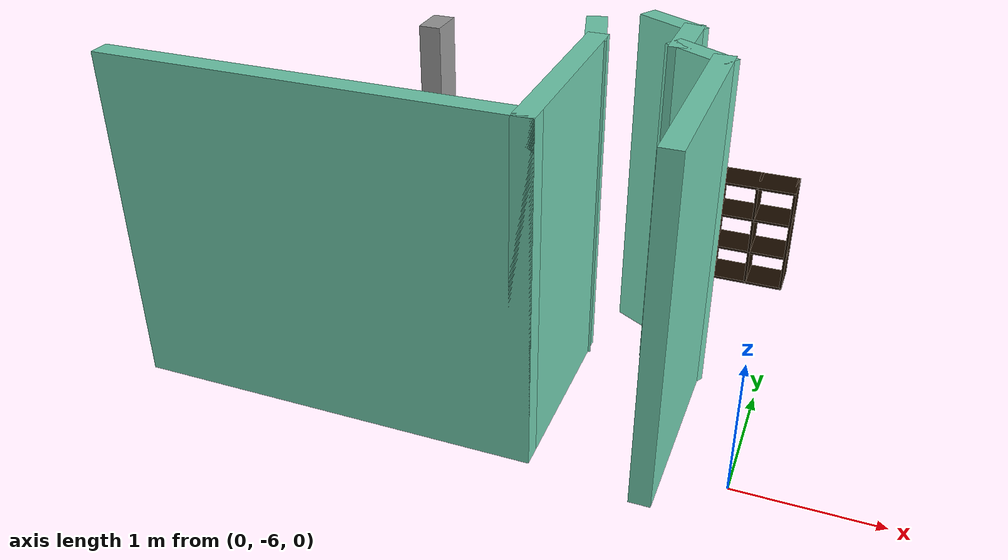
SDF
<sdf version="1.6">
 <world name="default">
  <model name="map_3">
   <pose>0.639107 -0.35531 0 0 -0 0</pose>
   <link name="Wall_134">
    <collision name="Wall_134_Collision">
     <geometry><box><size>0.25 0.15 2.5</size></box></geometry>
     <pose>0 0 1.25 0 -0 0</pose>
    </collision>
    <visual name="Wall_134_Visual">
     <pose>0 0 1.25 0 -0 0</pose>
     <geometry><box><size>0.25 0.15 2.5</size></box></geometry>
     <material>
      <script><uri>file://media/materials/scripts/gazebo.material</uri><name>Gazebo/Grey</name></script>
      <ambient>1 1 1 1</ambient>
     </material>
     <meta><layer>0</layer></meta>
    </visual>
    <pose>-3.10893 -4.55681 0 0 -0 -1.5708</pose>
   </link>
   <link name="Wall_65">
    <collision name="Wall_65_Collision">
     <geometry><box><size>3 0.15 2.5</size></box></geometry>
     <pose>0 0 1.25 0 -0 0</pose>
    </collision>
    <visual name="Wall_65_Visual">
     <pose>0 0 1.25 0 -0 0</pose>
     <geometry><box><size>3 0.15 2.5</size></box></geometry>
     <material>
      <script><uri>file://media/materials/scripts/gazebo.material</uri><name>Gazebo/Grey</name></script>
      <ambient>0.435294 0.796078 0.67451 1</ambient>
     </material>
     <meta><layer>0</layer></meta>
    </visual>
    <pose>-3.43168 -5.80901 0 0 -0 0</pose>
   </link>
   <link name="Wall_66">
    <collision name="Wall_66_Collision">
     <geometry><box><size>1.5 0.15 2.5</size></box></geometry>
     <pose>0 0 1.25 0 -0 0</pose>
    </collision>
    <visual name="Wall_66_Visual">
     <pose>0 0 1.25 0 -0 0</pose>
     <geometry><box><size>1.5 0.15 2.5</size></box></geometry>
     <material>
      <script><uri>file://media/materials/scripts/gazebo.material</uri><name>Gazebo/Grey</name></script>
      <ambient>0.435294 0.796078 0.67451 1</ambient>
     </material>
     <meta><layer>0</layer></meta>
    </visual>
    <pose>-2.00669 -5.13401 0 0 -0 1.5708</pose>
   </link>
   <link name="Wall_67">
    <collision name="Wall_67_Collision">
     <geometry><box><size>0.5 0.15 2.5</size></box></geometry>
     <pose>0 0 1.25 0 -0 0</pose>
    </collision>
    <visual name="Wall_67_Visual">
     <pose>0 0 1.25 0 -0 0</pose>
     <geometry><box><size>0.5 0.15 2.5</size></box></geometry>
     <material>
      <script><uri>file://media/materials/scripts/gazebo.material</uri><name>Gazebo/Grey</name></script>
      <ambient>0.435294 0.796078 0.67451 1</ambient>
     </material>
     <meta><layer>0</layer></meta>
    </visual>
    <pose>-2.05198 -4.28997 0 0 -0 1.8326</pose>
   </link>
   <link name="Wall_71">
    <collision name="Wall_71_Collision">
     <geometry><box><size>0.5 0.15 2.5</size></box></geometry>
     <pose>0 0 1.25 0 -0 0</pose>
    </collision>
    <visual name="Wall_71_Visual">
     <pose>0 0 1.25 0 -0 0</pose>
     <geometry><box><size>0.5 0.15 2.5</size></box></geometry>
     <material>
      <script><uri>file://media/materials/scripts/gazebo.material</uri><name>Gazebo/Grey</name></script>
      <ambient>0.435294 0.796078 0.67451 1</ambient>
     </material>
     <meta><layer>0</layer></meta>
    </visual>
    <pose>-1.59572 -3.95843 0 0 -0 -0.523599</pose>
   </link>
   <link name="Wall_72">
    <collision name="Wall_72_Collision">
     <geometry><box><size>0.5 0.15 2.5</size></box></geometry>
     <pose>0 0 1.25 0 -0 0</pose>
    </collision>
    <visual name="Wall_72_Visual">
     <pose>0 0 1.25 0 -0 0</pose>
     <geometry><box><size>0.5 0.15 2.5</size></box></geometry>
     <material>
      <script><uri>file://media/materials/scripts/gazebo.material</uri><name>Gazebo/Grey</name></script>
      <ambient>0.435294 0.796078 0.67451 1</ambient>
     </material>
     <meta><layer>0</layer></meta>
    </visual>
    <pose>-1.44416 -4.22093 0 0 -0 -1.5708</pose>
   </link>
   <link name="Wall_73">
    <collision name="Wall_73_Collision">
     <geometry><box><size>0.5 0.15 2.5</size></box></geometry>
     <pose>0 0 1.25 0 -0 0</pose>
    </collision>
    <visual name="Wall_73_Visual">
     <pose>0 0 1.25 0 -0 0</pose>
     <geometry><box><size>0.5 0.15 2.5</size></box></geometry>
     <material>
      <script><uri>file://media/materials/scripts/gazebo.material</uri><name>Gazebo/Grey</name></script>
      <ambient>0.435294 0.796078 0.67451 1</ambient>
     </material>
     <meta><layer>0</layer></meta>
    </visual>
    <pose>-1.29261 -4.48343 0 0 -0 -0.523599</pose>
   </link>
   <link name="Wall_74">
    <collision name="Wall_74_Collision">
     <geometry><box><size>1.5 0.15 2.5</size></box></geometry>
     <pose>0 0 1.25 0 -0 0</pose>
    </collision>
    <visual name="Wall_74_Visual">
     <pose>0 0 1.25 0 -0 0</pose>
     <geometry><box><size>1.5 0.15 2.5</size></box></geometry>
     <material>
      <script><uri>file://media/materials/scripts/gazebo.material</uri><name>Gazebo/Grey</name></script>
      <ambient>0.435294 0.796078 0.67451 1</ambient>
     </material>
     <meta><layer>0</layer></meta>
    </visual>
    <pose>-1.14105 -5.24593 0 0 -0 -1.5708</pose>
   </link>
   <static>1</static>
  </model>
  <model name="6_Cube_StorageE_0">
   <link name="Wall_0">
    <pose>0 0 0.01 0 -0 0</pose>
    <inertial>
     <mass>1.6201</mass>
     <inertia><ixx>0.0119</ixx><iyy>0.0631</iyy><izz>0.0513</izz><ixy>0</ixy><ixz>0</ixz><iyz>0</iyz></inertia>
    </inertial>
    <collision name="Wall_0_Collision"><geometry><box><size>0.616 0.296 0.02</size></box></geometry></collision>
    <visual name="Wall_0_Visual">
     <geometry><box><size>0.616 0.296 0.02</size></box></geometry>
     <material>
      <script><uri>file://media/materials/scripts/gazebo.material</uri><name>Gazebo/Grey</name></script>
      <ambient>0.105882 0.0509804 0 1</ambient>
     </material>
    </visual>
   </link>
   <joint name="0_2" type="fixed">
    <pose>-0.308 0 0 0 -0 0</pose>
    <parent>Wall_2</parent>
    <child>Wall_0</child>
    <axis>
     <xyz>1 0 0</xyz>
     <use_parent_model_frame>0</use_parent_model_frame>
     <limit><lower>-1e+16</lower><upper>1e+16</upper></limit>
    </axis>
   </joint>
   <joint name="0_12" type="fixed">
    <parent>Wall_12</parent>
    <child>Wall_0</child>
    <axis>
     <xyz>0 0 1</xyz>
     <use_parent_model_frame>0</use_parent_model_frame>
     <limit><lower>-1e+16</lower><upper>1e+16</upper></limit>
    </axis>
   </joint>
   <joint name="0_4" type="fixed">
    <pose>0.308 0 0 0 -0 0</pose>
    <parent>Wall_4</parent>
    <child>Wall_0</child>
    <axis>
     <xyz>1 0 0</xyz>
     <use_parent_model_frame>0</use_parent_model_frame>
     <limit><lower>-1e+16</lower><upper>1e+16</upper></limit>
    </axis>
   </joint>
   <link name="Wall_10">
    <pose>0 0 0.61 0 -0 0</pose>
    <inertial>
     <mass>1.6201</mass>
     <inertia><ixx>0.0119</ixx><iyy>0.0631</iyy><izz>0.0513</izz><ixy>0</ixy><ixz>0</ixz><iyz>0</iyz></inertia>
    </inertial>
    <collision name="Wall_10_Collision"><geometry><box><size>0.616 0.296 0.02</size></box></geometry></collision>
    <visual name="Wall_10_Visual">
     <geometry><box><size>0.616 0.296 0.02</size></box></geometry>
     <material>
      <script><uri>file://media/materials/scripts/gazebo.material</uri><name>Gazebo/Grey</name></script>
      <ambient>0.105882 0.0509804 0 1</ambient>
     </material>
    </visual>
   </link>
   <joint name="10_2" type="fixed">
    <pose>-0.308 0 0 0 -0 0</pose>
    <parent>Wall_2</parent>
    <child>Wall_10</child>
    <axis>
     <xyz>1 0 0</xyz>
     <use_parent_model_frame>0</use_parent_model_frame>
     <limit><lower>-1e+16</lower><upper>1e+16</upper></limit>
    </axis>
   </joint>
   <joint name="10_12" type="fixed">
    <parent>Wall_12</parent>
    <child>Wall_10</child>
    <axis>
     <xyz>0 0 1</xyz>
     <use_parent_model_frame>0</use_parent_model_frame>
     <limit><lower>-1e+16</lower><upper>1e+16</upper></limit>
    </axis>
   </joint>
   <joint name="10_4" type="fixed">
    <pose>0.308 0 0 0 -0 0</pose>
    <parent>Wall_4</parent>
    <child>Wall_10</child>
    <axis>
     <xyz>1 0 0</xyz>
     <use_parent_model_frame>0</use_parent_model_frame>
     <limit><lower>-1e+16</lower><upper>1e+16</upper></limit>
    </axis>
   </joint>
   <link name="Wall_12">
    <pose>0 0 0.4575 0 -0 0</pose>
    <inertial>
     <mass>2.4065</mass>
     <inertia><ixx>0.0177</ixx><iyy>0.1855</iyy><izz>0.168</izz><ixy>0</ixy><ixz>0</ixz><iyz>0</iyz></inertia>
    </inertial>
    <collision name="Wall_12_Collision"><geometry><box><size>0.02 0.296 0.915</size></box></geometry></collision>
    <visual name="Wall_12_Visual">
     <geometry><box><size>0.02 0.296 0.915</size></box></geometry>
     <material>
      <script><uri>file://media/materials/scripts/gazebo.material</uri><name>Gazebo/Grey</name></script>
      <ambient>0.105882 0.0509804 0 1</ambient>
     </material>
    </visual>
   </link>
   <link name="Wall_2">
    <pose>-0.298 0 0.4575 0 -0 0</pose>
    <inertial>
     <mass>2.4065</mass>
     <inertia><ixx>0.0177</ixx><iyy>0.1855</iyy><izz>0.168</izz><ixy>0</ixy><ixz>0</ixz><iyz>0</iyz></inertia>
    </inertial>
    <collision name="Wall_2_Collision"><geometry><box><size>0.02 0.296 0.915</size></box></geometry></collision>
    <visual name="Wall_2_Visual">
     <geometry><box><size>0.02 0.296 0.915</size></box></geometry>
     <material>
      <script><uri>file://media/materials/scripts/gazebo.material</uri><name>Gazebo/Grey</name></script>
      <ambient>0.105882 0.0509804 0 1</ambient>
     </material>
    </visual>
   </link>
   <link name="Wall_4">
    <pose>0.298 0 0.4575 0 -0 0</pose>
    <inertial>
     <mass>2.4065</mass>
     <inertia><ixx>0.0177</ixx><iyy>0.1855</iyy><izz>0.168</izz><ixy>0</ixy><ixz>0</ixz><iyz>0</iyz></inertia>
    </inertial>
    <collision name="Wall_4_Collision"><geometry><box><size>0.02 0.296 0.915</size></box></geometry></collision>
    <visual name="Wall_4_Visual">
     <geometry><box><size>0.02 0.296 0.915</size></box></geometry>
     <material>
      <script><uri>file://media/materials/scripts/gazebo.material</uri><name>Gazebo/Grey</name></script>
      <ambient>0.105882 0.0509804 0 1</ambient>
     </material>
    </visual>
   </link>
   <link name="Wall_6">
    <pose>0 0 0.905 0 -0 0</pose>
    <inertial>
     <mass>1.6201</mass>
     <inertia><ixx>0.0119</ixx><iyy>0.0631</iyy><izz>0.0513</izz><ixy>0</ixy><ixz>0</ixz><iyz>0</iyz></inertia>
    </inertial>
    <collision name="Wall_6_Collision"><geometry><box><size>0.616 0.296 0.02</size></box></geometry></collision>
    <visual name="Wall_6_Visual">
     <geometry><box><size>0.616 0.296 0.02</size></box></geometry>
     <material>
      <script><uri>file://media/materials/scripts/gazebo.material</uri><name>Gazebo/Grey</name></script>
      <ambient>0.105882 0.0509804 0 1</ambient>
     </material>
    </visual>
   </link>
   <joint name="6_2" type="fixed">
    <pose>-0.308 0 0 0 -0 0</pose>
    <parent>Wall_2</parent>
    <child>Wall_6</child>
    <axis>
     <xyz>2 0 0</xyz>
     <use_parent_model_frame>0</use_parent_model_frame>
     <limit><lower>-1e+16</lower><upper>1e+16</upper></limit>
    </axis>
   </joint>
   <joint name="6_12" type="fixed">
    <parent>Wall_12</parent>
    <child>Wall_6</child>
    <axis>
     <xyz>0 0 1</xyz>
     <use_parent_model_frame>0</use_parent_model_frame>
     <limit><lower>-1e+16</lower><upper>1e+16</upper></limit>
    </axis>
   </joint>
   <joint name="6_4" type="fixed">
    <pose>0.308 0 0 0 -0 0</pose>
    <parent>Wall_4</parent>
    <child>Wall_6</child>
    <axis>
     <xyz>1 0 0</xyz>
     <use_parent_model_frame>0</use_parent_model_frame>
     <limit><lower>-1e+16</lower><upper>1e+16</upper></limit>
    </axis>
   </joint>
   <link name="Wall_8">
    <pose>0 0 0.305 0 -0 0</pose>
    <inertial>
     <mass>1.6201</mass>
     <inertia><ixx>0.0119</ixx><iyy>0.0631</iyy><izz>0.0513</izz><ixy>0</ixy><ixz>0</ixz><iyz>0</iyz></inertia>
    </inertial>
    <collision name="Wall_8_Collision"><geometry><box><size>0.616 0.296 0.02</size></box></geometry></collision>
    <visual name="Wall_8_Visual">
     <geometry><box><size>0.616 0.296 0.02</size></box></geometry>
     <material>
      <script><uri>file://media/materials/scripts/gazebo.material</uri><name>Gazebo/Grey</name></script>
      <ambient>0.105882 0.0509804 0 1</ambient>
     </material>
    </visual>
   </link>
   <joint name="8_2" type="fixed">
    <pose>-0.308 0 0 0 -0 0</pose>
    <parent>Wall_2</parent>
    <child>Wall_8</child>
    <axis>
     <xyz>1 0 0</xyz>
     <use_parent_model_frame>0</use_parent_model_frame>
     <limit><lower>-1e+16</lower><upper>1e+16</upper></limit>
    </axis>
   </joint>
   <joint name="8_12" type="fixed">
    <parent>Wall_12</parent>
    <child>Wall_8</child>
    <axis>
     <xyz>0 0 1</xyz>
     <use_parent_model_frame>0</use_parent_model_frame>
     <limit><lower>-1e+16</lower><upper>1e+16</upper></limit>
    </axis>
   </joint>
   <joint name="8_4" type="fixed">
    <pose>0.308 0 0 0 -0 0</pose>
    <parent>Wall_4</parent>
    <child>Wall_8</child>
    <axis>
     <xyz>1 0 0</xyz>
     <use_parent_model_frame>0</use_parent_model_frame>
     <limit><lower>-1e+16</lower><upper>1e+16</upper></limit>
    </axis>
   </joint>
   <static>1</static>
   <pose>-0.333463 -3.30215 0 0 -0 0</pose>
  </model>
 </world>
</sdf>
